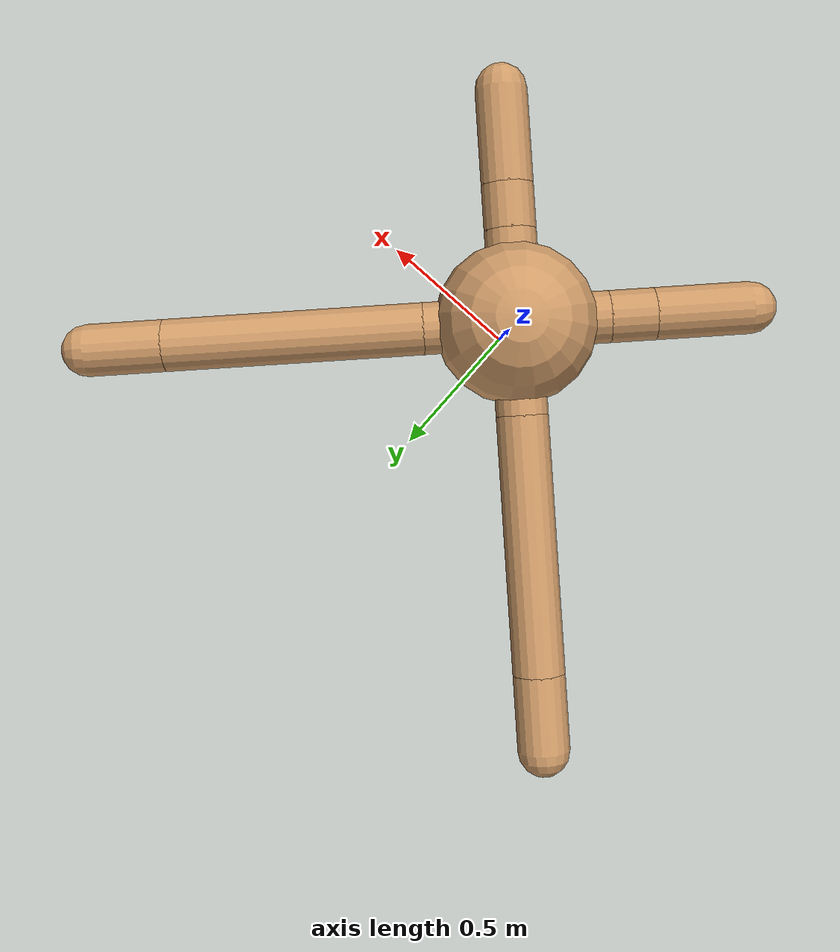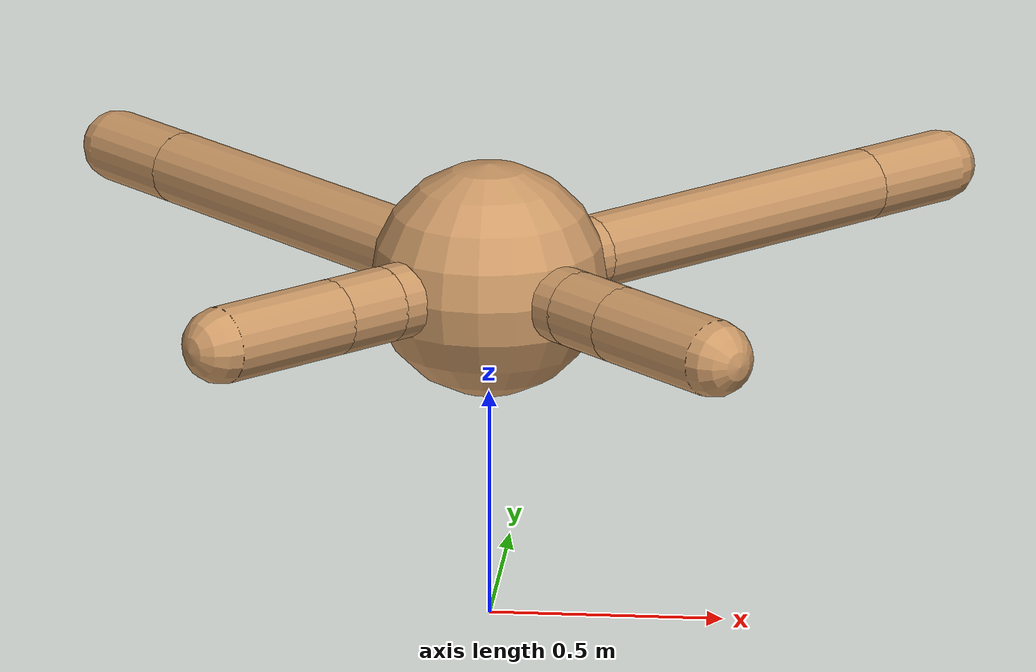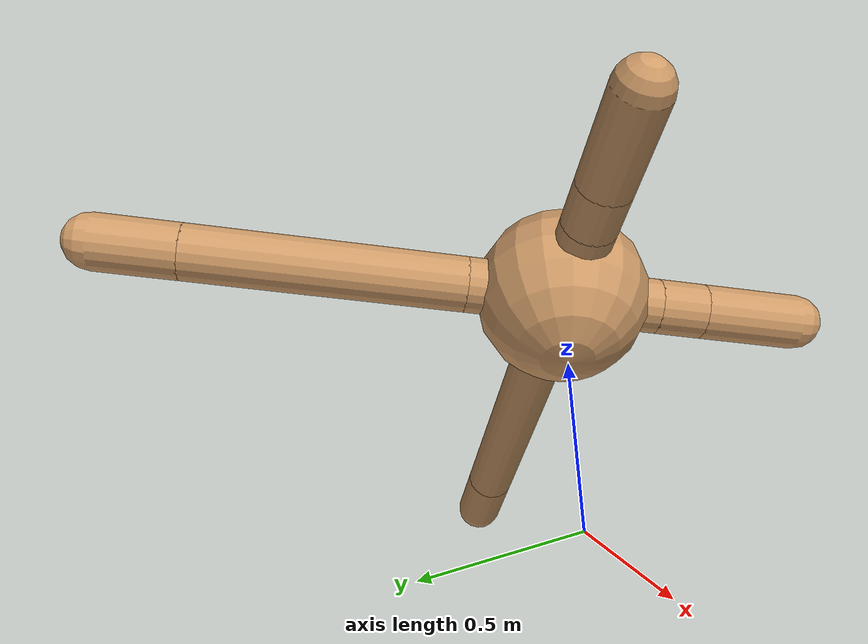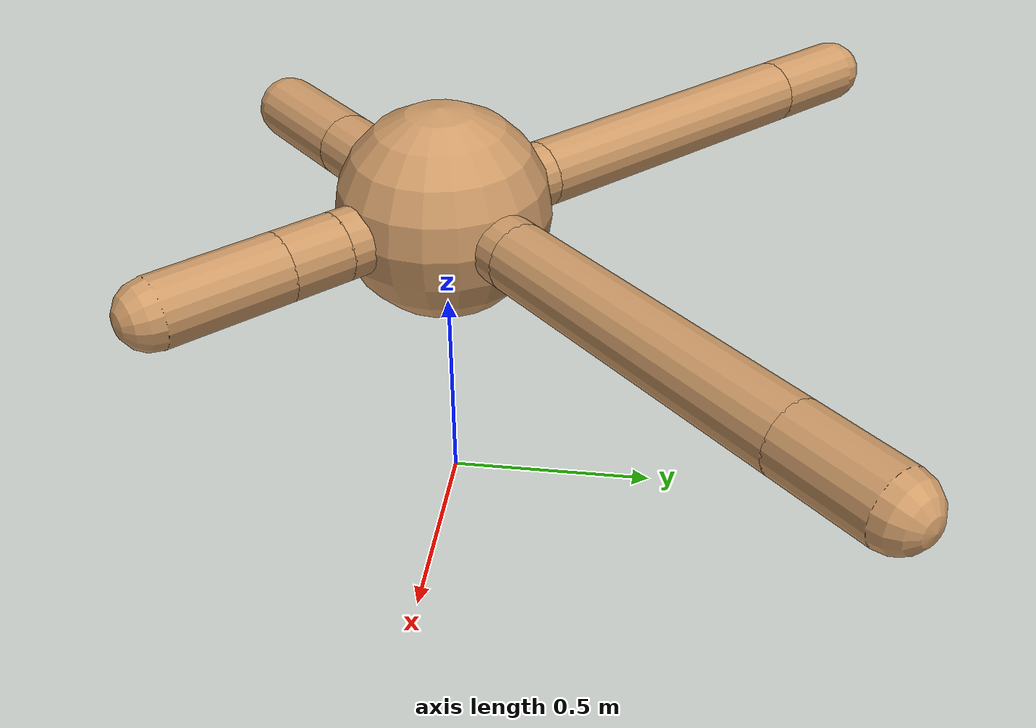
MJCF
<?xml version="1.0" ?>
<mujoco>
    <default>
        <joint armature="1" damping="1" limited="true"/>
        <geom condim="3" conaffinity="0" density="5.0" friction="1 0.5 0.5" margin="0.01"/>
    </default>
    <worldbody>
        <body name="Base" pos="0.0 0.0 0.75">
            <joint type="free" armature="0" damping="0" limited="false" margin="0.01" pos="0 0 0"/>
            <geom type="sphere" rgba="0.8 0.6 0.4 1" size="0.25"/>
            <camera name="track" mode="trackcom" pos="0 -6 0.6" xyaxes="1 0 0 0 0 1"/>
            <geom name="limb0" type="capsule" fromto="0 0 0 0.2 0.2 0.0" size="0.08" rgba="0.8 0.6 0.4 1"/>
            <body name="rod_0.1" pos="0.47890538360514506 0.47890538360514506 0.0">
                <geom type="capsule" fromto="-0.27890538360514505 -0.27890538360514505 -0.0 0.27890538360514505 0.27890538360514505 0.0" size="0.08" name="geom_0.1" rgba="0.8 0.6 0.4 1"/>
                <site pos="0 0 0" quat="0.9238795325112867 0.0 0.0 0.3826834323650898" name="site_0.1"/>
                <joint type="hinge" pos="-0.27890538360514505 -0.27890538360514505 -0.0" axis="0 0 1" range="-30 30" name="joint_Base=rod_0.1"/>
                <body pos="-0.27890538360514505 -0.27890538360514505 -0.0" name="p0">
                    <site name="p0"/>
                </body>
                <body name="rod_1.2" pos="0.36167130932278546 0.36167130932278546 0.0">
                    <geom type="capsule" fromto="-0.08276592571764041 -0.08276592571764041 -0.0 0.08276592571764041 0.08276592571764041 0.0" size="0.08" name="geom_1.2" rgba="0.8 0.6 0.4 1"/>
                    <site pos="0 0 0" quat="0.9238795325112867 0.0 0.0 0.3826834323650898" name="site_1.2"/>
                    <joint type="hinge" pos="-0.08276592571764041 -0.08276592571764041 -0.0" axis="-1 1 0" range="30 70" name="joint_rod_0.1=rod_1.2"/>
                    <body pos="-0.08276592571764041 -0.08276592571764041 -0.0" name="p1">
                        <site name="p1"/>
                    </body>
                </body>
            </body>
            <geom name="limb1" type="capsule" fromto="0 0 0 -0.2 0.2 0.0" size="0.08" rgba="0.8 0.6 0.4 1"/>
            <body name="rod_3.4" pos="-0.47890538360514506 0.47890538360514506 0.0">
                <geom type="capsule" fromto="0.27890538360514505 -0.27890538360514505 -0.0 -0.27890538360514505 0.27890538360514505 0.0" size="0.08" name="geom_3.4" rgba="0.8 0.6 0.4 1"/>
                <site pos="0 0 0" quat="0.38268343236508984 0.0 -0.0 0.9238795325112867" name="site_3.4"/>
                <joint type="hinge" pos="0.27890538360514505 -0.27890538360514505 -0.0" axis="0 0 1" range="-30 30" name="joint_Base=rod_3.4"/>
                <body pos="0.27890538360514505 -0.27890538360514505 -0.0" name="p3">
                    <site name="p3"/>
                </body>
                <body name="rod_4.5" pos="-0.36167130932278546 0.36167130932278546 0.0">
                    <geom type="capsule" fromto="0.08276592571764041 -0.08276592571764041 -0.0 -0.08276592571764041 0.08276592571764041 0.0" size="0.08" name="geom_4.5" rgba="0.8 0.6 0.4 1"/>
                    <site pos="0 0 0" quat="0.38268343236508984 0.0 -0.0 0.9238795325112867" name="site_4.5"/>
                    <joint type="hinge" pos="0.08276592571764041 -0.08276592571764041 -0.0" axis="1 1 0" range="-70 -30" name="joint_rod_3.4=rod_4.5"/>
                    <body pos="0.08276592571764041 -0.08276592571764041 -0.0" name="p4">
                        <site name="p4"/>
                    </body>
                </body>
            </body>
            <geom name="limb2" type="capsule" fromto="0 0 0 -0.2 -0.2 0.0" size="0.08" rgba="0.8 0.6 0.4 1"/>
            <body name="rod_6.7" pos="-0.24889623227551622 -0.24889623227551622 0.0">
                <geom type="capsule" fromto="0.048896232275516205 0.048896232275516205 -0.0 -0.048896232275516205 -0.048896232275516205 0.0" size="0.08" name="geom_6.7" rgba="0.8 0.6 0.4 1"/>
                <site pos="0 0 0" quat="0.38268343236508984 0.0 -0.0 -0.9238795325112867" name="site_6.7"/>
                <joint type="hinge" pos="0.048896232275516205 0.048896232275516205 -0.0" axis="0 0 1" range="-30 30" name="joint_Base=rod_6.7"/>
                <body pos="0.048896232275516205 0.048896232275516205 -0.0" name="p6">
                    <site name="p6"/>
                </body>
                <body name="rod_7.8" pos="-0.15176163278711527 -0.15176163278711527 0.0">
                    <geom type="capsule" fromto="0.10286540051159906 0.10286540051159906 -0.0 -0.10286540051159906 -0.10286540051159906 0.0" size="0.08" name="geom_7.8" rgba="0.8 0.6 0.4 1"/>
                    <site pos="0 0 0" quat="0.38268343236508984 0.0 -0.0 -0.9238795325112867" name="site_7.8"/>
                    <joint type="hinge" pos="0.10286540051159906 0.10286540051159906 -0.0" axis="-1 1 0" range="-70 -30" name="joint_rod_6.7=rod_7.8"/>
                    <body pos="0.10286540051159906 0.10286540051159906 -0.0" name="p7">
                        <site name="p7"/>
                    </body>
                </body>
            </body>
            <geom name="limb3" type="capsule" fromto="0 0 0 0.2 -0.2 0.0" size="0.08" rgba="0.8 0.6 0.4 1"/>
            <body name="rod_9.10" pos="0.24889623227551622 -0.24889623227551622 0.0">
                <geom type="capsule" fromto="-0.048896232275516205 0.048896232275516205 -0.0 0.048896232275516205 -0.048896232275516205 0.0" size="0.08" name="geom_9.10" rgba="0.8 0.6 0.4 1"/>
                <site pos="0 0 0" quat="0.9238795325112867 0.0 0.0 -0.3826834323650898" name="site_9.10"/>
                <joint type="hinge" pos="-0.048896232275516205 0.048896232275516205 -0.0" axis="0 0 1" range="-30 30" name="joint_Base=rod_9.10"/>
                <body pos="-0.048896232275516205 0.048896232275516205 -0.0" name="p9">
                    <site name="p9"/>
                </body>
                <body name="rod_10.11" pos="0.15176163278711527 -0.15176163278711527 0.0">
                    <geom type="capsule" fromto="-0.10286540051159906 0.10286540051159906 -0.0 0.10286540051159906 -0.10286540051159906 0.0" size="0.08" name="geom_10.11" rgba="0.8 0.6 0.4 1"/>
                    <site pos="0 0 0" quat="0.9238795325112867 0.0 0.0 -0.38268343236508984" name="site_10.11"/>
                    <joint type="hinge" pos="-0.10286540051159906 0.10286540051159906 -0.0" axis="1 1 0" range="30 70" name="joint_rod_9.10=rod_10.11"/>
                    <body pos="-0.10286540051159906 0.10286540051159906 -0.0" name="p10">
                        <site name="p10"/>
                    </body>
                </body>
            </body>
        </body>
    </worldbody>
    <actuator>
        <motor gear="150" ctrlrange="-1.0 1.0" ctrllimited="true" joint="joint_Base=rod_0.1"/>
        <motor gear="150" ctrlrange="-1.0 1.0" ctrllimited="true" joint="joint_rod_0.1=rod_1.2"/>
        <motor gear="150" ctrlrange="-1.0 1.0" ctrllimited="true" joint="joint_Base=rod_3.4"/>
        <motor gear="150" ctrlrange="-1.0 1.0" ctrllimited="true" joint="joint_rod_3.4=rod_4.5"/>
        <motor gear="150" ctrlrange="-1.0 1.0" ctrllimited="true" joint="joint_Base=rod_6.7"/>
        <motor gear="150" ctrlrange="-1.0 1.0" ctrllimited="true" joint="joint_rod_6.7=rod_7.8"/>
        <motor gear="150" ctrlrange="-1.0 1.0" ctrllimited="true" joint="joint_Base=rod_9.10"/>
        <motor gear="150" ctrlrange="-1.0 1.0" ctrllimited="true" joint="joint_rod_9.10=rod_10.11"/>
    </actuator>
    <sensor>
        <accelerometer site="site_0.1"/>
        <gyro site="site_0.1"/>
        <magnetometer site="site_0.1"/>
        <accelerometer site="site_1.2"/>
        <gyro site="site_1.2"/>
        <magnetometer site="site_1.2"/>
        <accelerometer site="site_3.4"/>
        <gyro site="site_3.4"/>
        <magnetometer site="site_3.4"/>
        <accelerometer site="site_4.5"/>
        <gyro site="site_4.5"/>
        <magnetometer site="site_4.5"/>
        <accelerometer site="site_6.7"/>
        <gyro site="site_6.7"/>
        <magnetometer site="site_6.7"/>
        <accelerometer site="site_7.8"/>
        <gyro site="site_7.8"/>
        <magnetometer site="site_7.8"/>
        <accelerometer site="site_9.10"/>
        <gyro site="site_9.10"/>
        <magnetometer site="site_9.10"/>
        <accelerometer site="site_10.11"/>
        <gyro site="site_10.11"/>
        <magnetometer site="site_10.11"/>
    </sensor>
    <contact>
        <pair geom1="geom_0.1" geom2="floor"/>
        <pair geom1="geom_1.2" geom2="floor"/>
        <pair geom1="geom_3.4" geom2="floor"/>
        <pair geom1="geom_4.5" geom2="floor"/>
        <pair geom1="geom_6.7" geom2="floor"/>
        <pair geom1="geom_7.8" geom2="floor"/>
        <pair geom1="geom_9.10" geom2="floor"/>
        <pair geom1="geom_10.11" geom2="floor"/>
    </contact>
</mujoco>
